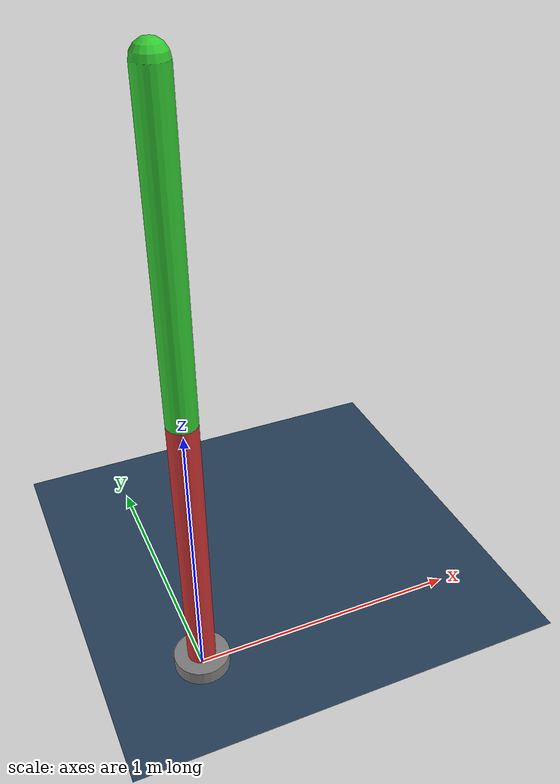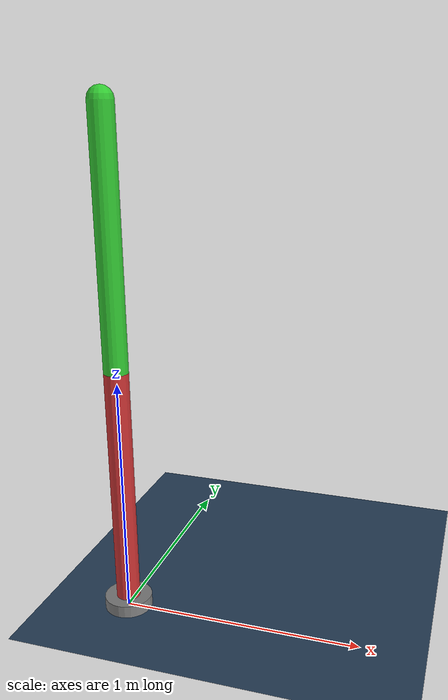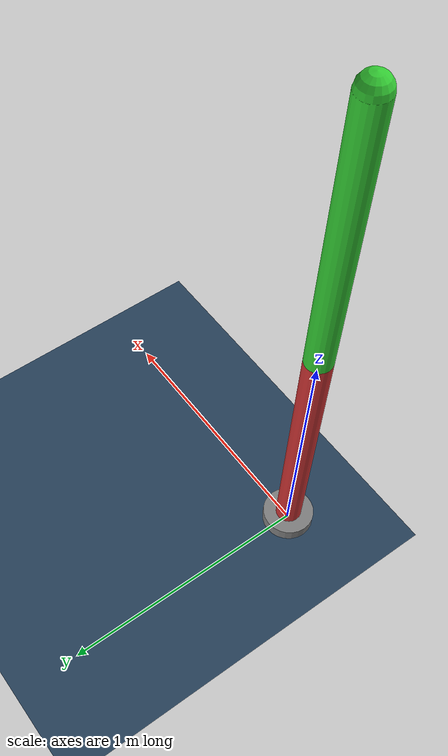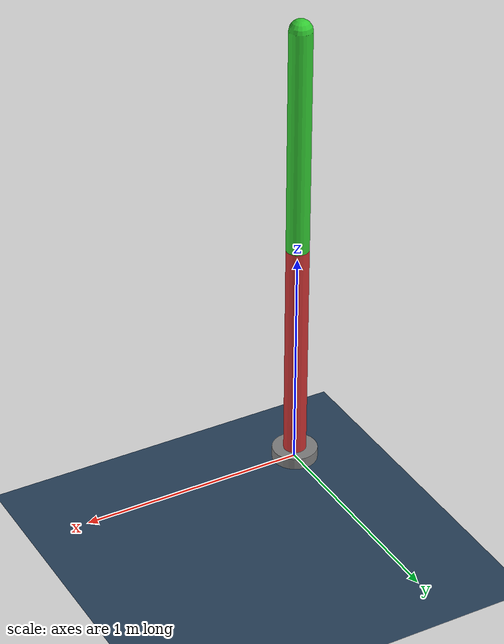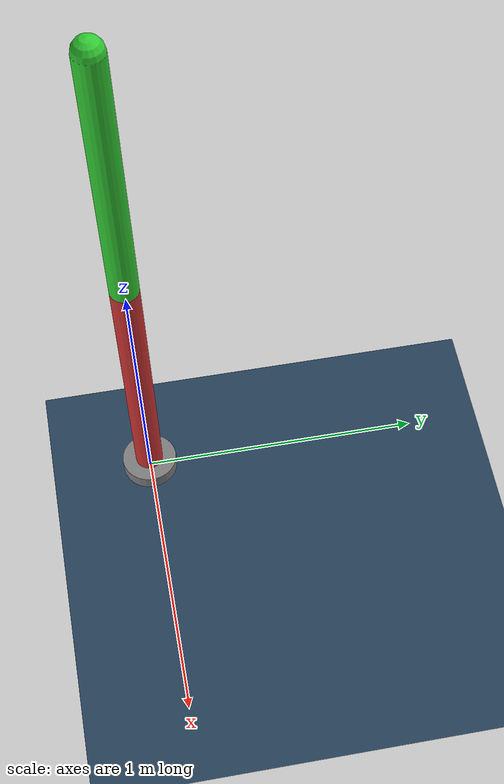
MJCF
<mujoco model="2dof_arm">
  <compiler angle="radian" autolimits="true"/>
  <option gravity="0 0 -9.81" timestep="0.002"/>

  <asset>
    <texture type="skybox" builtin="gradient" rgb1="0.3 0.5 0.7" rgb2="0 0 0" width="512" height="3072"/>
    <texture type="2d" name="groundplane" builtin="checker" mark="edge" rgb1="0.2 0.3 0.4" rgb2="0.1 0.2 0.3"
      markrgb="0.8 0.8 0.8" width="300" height="300"/>
    <material name="groundplane" texture="groundplane" texuniform="true" texrepeat="5 5" reflectance="0.2"/>
  </asset>

  <worldbody>
    <light pos="0 0 1.5" dir="0 0 -1" directional="true"/>
    <geom name="floor" size="0 0 0.05" type="plane" material="groundplane"/>
    <body name="base" pos="0 0 0">
      <geom type="cylinder" size="0.1 0.05" rgba="0.5 0.5 0.5 1"/>

      <body name="link1" pos="0 0 0.05">
        <inertial mass="1.0" pos="0 0 0.5" diaginertia="0.1 0.1 0.01"/>
        <joint name="joint1" type="hinge" axis="0 1 0" range="-3.14 3.14"/>
        <geom type="capsule" size="0.05 0.5" pos="0 0 0.5" rgba="0.8 0.2 0.2 1"/>

        <body name="link2" pos="0 0 1">
          <inertial mass="1.0" pos="0 0 0.5" diaginertia="0.1 0.1 0.01"/>
          <joint name="joint2" type="hinge" axis="0 1 0" range="-3.14 3.14"/>
          <geom type="capsule" size="0.05 0.5" pos="0 0 0.5" rgba="0.2 0.8 0.2 1"/>
        </body>
      </body>
    </body>
  </worldbody>

  <actuator>
    <motor name="tau1" joint="joint1" gear="1"/>
    <motor name="tau2" joint="joint2" gear="1"/>
  </actuator>
</mujoco>
